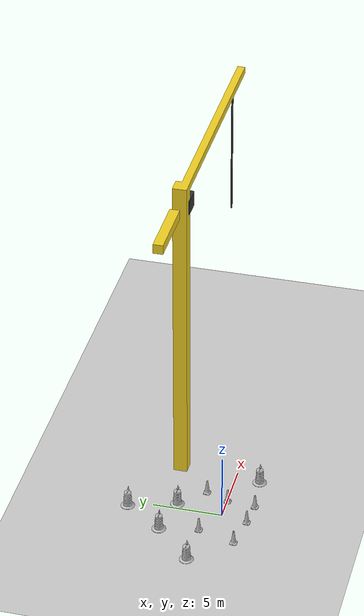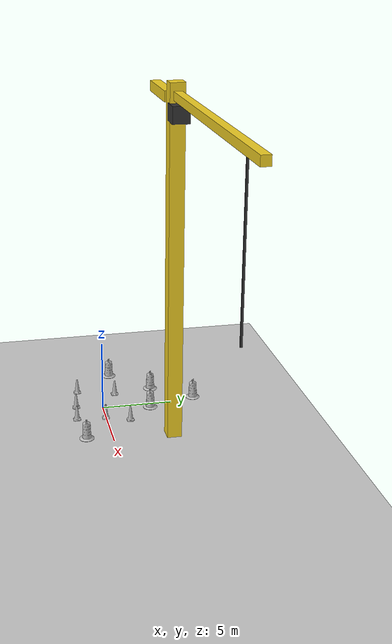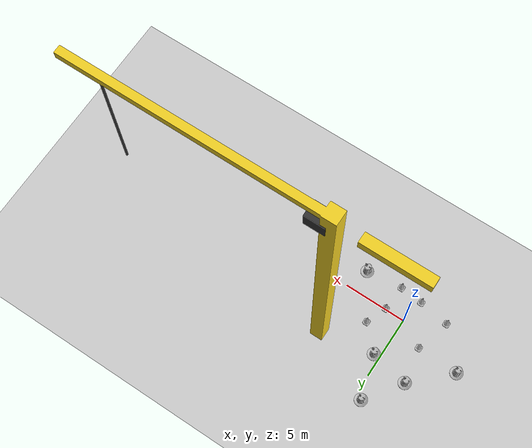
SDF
<sdf version="1.7">
 <world name="default">
  <light name="sun" type="directional">
   <pose>0 0 10 0 -0 0</pose>
   <diffuse>0.8 0.8 0.8 1</diffuse>
   <specular>0.2 0.2 0.2 1</specular>
   <attenuation>
    <range>1000</range>
    <constant>0.9</constant>
    <linear>0.01</linear>
    <quadratic>0.001</quadratic>
   </attenuation>
   <direction>-0.5 0.1 -0.9</direction>
   <spot><inner_angle>0</inner_angle><outer_angle>0</outer_angle><falloff>0</falloff></spot>
  </light>
  <model name="ground_plane">
   <static>1</static>
   <link name="link">
    <collision name="collision">
     <geometry><plane><normal>0 0 1</normal><size>100 100</size></plane></geometry>
     <surface><friction><ode><mu>100</mu><mu2>50</mu2></ode></friction></surface>
    </collision>
    <visual name="visual">
     <cast_shadows>0</cast_shadows>
     <geometry><plane><normal>0 0 1</normal><size>100 100</size></plane></geometry>
     <material>
      <script><uri>file://media/materials/scripts/gazebo.material</uri><name>Gazebo/Grey</name></script>
     </material>
    </visual>
   </link>
  </model>
  <gravity>0 0 -9.8</gravity>
  <magnetic_field>6e-06 2.3e-05 -4.2e-05</magnetic_field>
  <atmosphere type="adiabatic"/>
  <physics type="ode">
   <max_step_size>0.001</max_step_size>
   <real_time_factor>1</real_time_factor>
   <real_time_update_rate>1000</real_time_update_rate>
  </physics>
  <scene><ambient>0.4 0.4 0.4 1</ambient><background>0.7 0.7 0.7 1</background><shadows>1</shadows></scene>
  <audio><device>default</device></audio>
  <spherical_coordinates>
   <surface_model>EARTH_WGS84</surface_model>
   <latitude_deg>0</latitude_deg>
   <longitude_deg>0</longitude_deg>
   <elevation>0</elevation>
   <heading_deg>0</heading_deg>
  </spherical_coordinates>
  <model name="tower_crane">
   <static>1</static>
   <link name="link">
    <collision name="collision">
     <geometry><mesh><uri>model://tower_crane/meshes/tower_crane.dae</uri></mesh></geometry>
    </collision>
    <visual name="visual">
     <geometry><mesh><uri>model://tower_crane/meshes/tower_crane.dae</uri></mesh></geometry>
    </visual>
   </link>
   <pose>4.79495 4.11843 0 0 -0 0</pose>
  </model>
  <model name="Construction Cone">
   <link name="link">
    <collision name="collision">
     <geometry>
      <mesh><scale>10 10 10</scale><uri>model://construction_cone/meshes/construction_cone.dae</uri></mesh>
     </geometry>
    </collision>
    <visual name="visual">
     <geometry>
      <mesh><scale>10 10 10</scale><uri>model://construction_cone/meshes/construction_cone.dae</uri></mesh>
     </geometry>
    </visual>
    <inertial>
     <inertia><ixx>1</ixx><ixy>0</ixy><ixz>0</ixz><iyy>1</iyy><iyz>0</iyz><izz>1</izz></inertia>
     <mass>1</mass>
    </inertial>
   </link>
   <pose>-2.80453 -1.5149 -0 0 -0 0</pose>
  </model>
  <model name="Construction Cone_0">
   <link name="link">
    <collision name="collision">
     <geometry>
      <mesh><scale>10 10 10</scale><uri>model://construction_cone/meshes/construction_cone.dae</uri></mesh>
     </geometry>
    </collision>
    <visual name="visual">
     <geometry>
      <mesh><scale>10 10 10</scale><uri>model://construction_cone/meshes/construction_cone.dae</uri></mesh>
     </geometry>
    </visual>
    <inertial>
     <inertia><ixx>1</ixx><ixy>0</ixy><ixz>0</ixz><iyy>1</iyy><iyz>0</iyz><izz>1</izz></inertia>
     <mass>1</mass>
    </inertial>
   </link>
   <pose>1.43993 -2.08372 0 -0 -0 -0</pose>
  </model>
  <model name="Construction Barrel">
   <link name="link">
    <inertial>
     <pose>0 0 0.4 0 -0 0</pose>
     <mass>500</mass>
     <inertia><ixx>51.2096</ixx><iyy>51.2096</iyy><izz>25</izz><ixy>0</ixy><ixz>0</ixz><iyz>0</iyz></inertia>
    </inertial>
    <collision name="collision">
     <geometry><mesh><uri>model://construction_barrel/meshes/construction_barrel.dae</uri></mesh></geometry>
    </collision>
    <visual name="visual">
     <geometry><mesh><uri>model://construction_barrel/meshes/construction_barrel.dae</uri></mesh></geometry>
    </visual>
   </link>
   <pose>-2.49582 3.97002 -2e-06 0 7e-06 -1.8e-05</pose>
  </model>
  <model name="Construction Cone_1">
   <link name="link">
    <collision name="collision">
     <geometry>
      <mesh><scale>10 10 10</scale><uri>model://construction_cone/meshes/construction_cone.dae</uri></mesh>
     </geometry>
    </collision>
    <visual name="visual">
     <geometry>
      <mesh><scale>10 10 10</scale><uri>model://construction_cone/meshes/construction_cone.dae</uri></mesh>
     </geometry>
    </visual>
    <inertial>
     <inertia><ixx>1</ixx><ixy>0</ixy><ixz>0</ixz><iyy>1</iyy><iyz>0</iyz><izz>1</izz></inertia>
     <mass>1</mass>
    </inertial>
   </link>
   <pose>-0.398722 -1.90787 0 -0 -0 -0</pose>
  </model>
  <model name="Construction Cone_2">
   <link name="link">
    <collision name="collision">
     <geometry>
      <mesh><scale>10 10 10</scale><uri>model://construction_cone/meshes/construction_cone.dae</uri></mesh>
     </geometry>
    </collision>
    <visual name="visual">
     <geometry>
      <mesh><scale>10 10 10</scale><uri>model://construction_cone/meshes/construction_cone.dae</uri></mesh>
     </geometry>
    </visual>
    <inertial>
     <inertia><ixx>1</ixx><ixy>0</ixy><ixz>0</ixz><iyy>1</iyy><iyz>0</iyz><izz>1</izz></inertia>
     <mass>1</mass>
    </inertial>
   </link>
   <pose>2.24751 1.60902 -0 1e-06 -0 0</pose>
  </model>
  <model name="Construction Barrel_0">
   <link name="link">
    <inertial>
     <pose>0 0 0.4 0 -0 0</pose>
     <mass>500</mass>
     <inertia><ixx>51.2096</ixx><iyy>51.2096</iyy><izz>25</izz><ixy>0</ixy><ixz>0</ixz><iyz>0</iyz></inertia>
    </inertial>
    <collision name="collision">
     <geometry><mesh><uri>model://construction_barrel/meshes/construction_barrel.dae</uri></mesh></geometry>
    </collision>
    <visual name="visual">
     <geometry><mesh><uri>model://construction_barrel/meshes/construction_barrel.dae</uri></mesh></geometry>
    </visual>
   </link>
   <pose>-5.27755 1.2671 0 2e-06 0 -1.3e-05</pose>
  </model>
  <model name="Construction Cone_3">
   <link name="link">
    <collision name="collision">
     <geometry>
      <mesh><scale>10 10 10</scale><uri>model://construction_cone/meshes/construction_cone.dae</uri></mesh>
     </geometry>
    </collision>
    <visual name="visual">
     <geometry>
      <mesh><scale>10 10 10</scale><uri>model://construction_cone/meshes/construction_cone.dae</uri></mesh>
     </geometry>
    </visual>
    <inertial>
     <inertia><ixx>1</ixx><ixy>0</ixy><ixz>0</ixz><iyy>1</iyy><iyz>0</iyz><izz>1</izz></inertia>
     <mass>1</mass>
    </inertial>
   </link>
   <pose>-2.01624 1.18235 -0 0 -0 0</pose>
  </model>
  <model name="Construction Barrel_1">
   <link name="link">
    <inertial>
     <pose>0 0 0.4 0 -0 0</pose>
     <mass>500</mass>
     <inertia><ixx>51.2096</ixx><iyy>51.2096</iyy><izz>25</izz><ixy>0</ixy><ixz>0</ixz><iyz>0</iyz></inertia>
    </inertial>
    <collision name="collision">
     <geometry><mesh><uri>model://construction_barrel/meshes/construction_barrel.dae</uri></mesh></geometry>
    </collision>
    <visual name="visual">
     <geometry><mesh><uri>model://construction_barrel/meshes/construction_barrel.dae</uri></mesh></geometry>
    </visual>
   </link>
   <pose>4.29226 -1.79071 -2e-06 0 7e-06 -9e-06</pose>
  </model>
  <model name="Construction Barrel_2">
   <link name="link">
    <inertial>
     <pose>0 0 0.4 0 -0 0</pose>
     <mass>500</mass>
     <inertia><ixx>51.2096</ixx><iyy>51.2096</iyy><izz>25</izz><ixy>0</ixy><ixz>0</ixz><iyz>0</iyz></inertia>
    </inertial>
    <collision name="collision">
     <geometry><mesh><uri>model://construction_barrel/meshes/construction_barrel.dae</uri></mesh></geometry>
    </collision>
    <visual name="visual">
     <geometry><mesh><uri>model://construction_barrel/meshes/construction_barrel.dae</uri></mesh></geometry>
    </visual>
   </link>
   <pose>-0.485952 6.77832 -5e-06 -9e-06 -9e-06 -8e-06</pose>
  </model>
  <model name="Construction Cone_4">
   <link name="link">
    <collision name="collision">
     <geometry>
      <mesh><scale>10 10 10</scale><uri>model://construction_cone/meshes/construction_cone.dae</uri></mesh>
     </geometry>
    </collision>
    <visual name="visual">
     <geometry>
      <mesh><scale>10 10 10</scale><uri>model://construction_cone/meshes/construction_cone.dae</uri></mesh>
     </geometry>
    </visual>
    <inertial>
     <inertia><ixx>1</ixx><ixy>0</ixy><ixz>0</ixz><iyy>1</iyy><iyz>0</iyz><izz>1</izz></inertia>
     <mass>1</mass>
    </inertial>
   </link>
   <pose>1.5979 -0.050845 -5e-06 -5e-06 1e-06 0</pose>
  </model>
  <model name="Construction Barrel_3">
   <link name="link">
    <inertial>
     <pose>0 0 0.4 0 -0 0</pose>
     <mass>500</mass>
     <inertia><ixx>51.2096</ixx><iyy>51.2096</iyy><izz>25</izz><ixy>0</ixy><ixz>0</ixz><iyz>0</iyz></inertia>
    </inertial>
    <collision name="collision">
     <geometry><mesh><uri>model://construction_barrel/meshes/construction_barrel.dae</uri></mesh></geometry>
    </collision>
    <visual name="visual">
     <geometry><mesh><uri>model://construction_barrel/meshes/construction_barrel.dae</uri></mesh></geometry>
    </visual>
   </link>
   <pose>0.513215 3.38006 0 0 0 -4e-06</pose>
  </model>
 </world>
</sdf>
